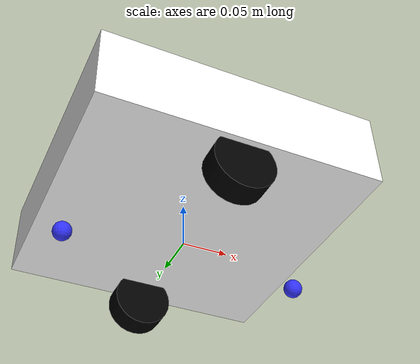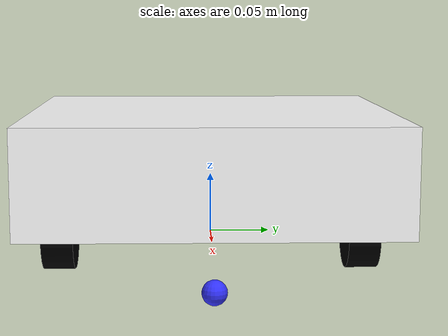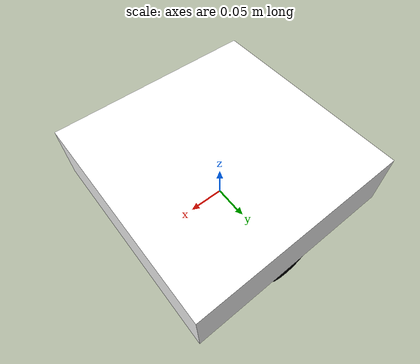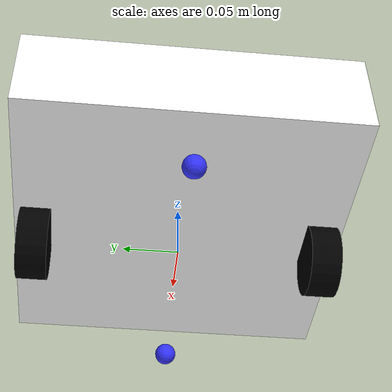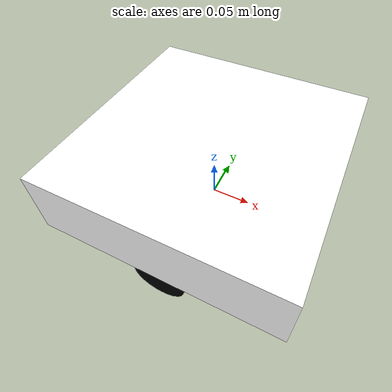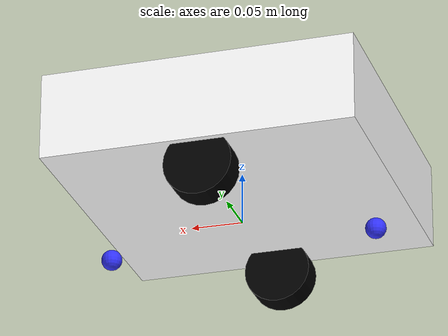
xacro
<?xml version="1.0"?>
<robot xmlns:xacro="http://www.ros.org/wiki/xacro" >

    <xacro:include filename="inertial_macros.xacro"/>

    <xacro:property name="chassis_length" value="0.30"/>
    <xacro:property name="chassis_width" value="0.30"/>
    <xacro:property name="chassis_height" value="0.085"/>
    <xacro:property name="chassis_mass" value="1.5"/>
    <xacro:property name="wheel_radius" value="0.0325"/>
    <xacro:property name="wheel_thickness" value="0.027"/>
    <xacro:property name="wheel_mass" value="0.05"/>
    <xacro:property name="wheel_offset_x" value="0.15"/>
    <xacro:property name="wheel_offset_y" value="0.13"/>
    <xacro:property name="wheel_offset_z" value="-0.02"/>
    <xacro:property name="caster_wheel_radius" value="0.01"/>
    <xacro:property name="caster_wheel_mass" value="0.1"/>
    <xacro:property name="caster_wheel_offset_x" value="0.02"/>
    <xacro:property name="caster_wheel_offset_z" value="${wheel_offset_z - wheel_radius + caster_wheel_radius}"/>
    <xacro:property name="caster1_wheel_radius" value="0.01"/>
    <xacro:property name="caster1_wheel_mass" value="0.1"/>
    <xacro:property name="caster1_wheel_offset_x" value="0.28"/>
    <xacro:property name="caster1_wheel_offset_z" value="${wheel_offset_z - wheel_radius + caster1_wheel_radius}"/>

    <material name="white">
        <color rgba="1 1 1 1" />
    </material>

    <material name="orange">
        <color rgba="1 0.3 0.1 1"/>
    </material>

    <material name="blue">
        <color rgba="0.2 0.2 1 1"/>
    </material>

    <material name="black">
        <color rgba="0 0 0 1"/>
    </material>

    <material name="red">
        <color rgba="1 0 0 1"/>
    </material>

    <!-- BASE LINK -->

    <link name="base_link">

    </link>

    <!-- BASE_FOOTPRINT LINK -->

    <joint name="base_footprint_joint" type="fixed">
        <parent link="base_link"/>
        <child link="base_footprint"/>
        <origin xyz="0 0 0" rpy="0 0 0"/>
    </joint>

    <link name="base_footprint">

    </link>

    <!-- CHASSIS LINK -->

    <joint name="chassis_joint" type="fixed">
        <parent link="base_link"/>
        <child link="chassis"/>
        <origin xyz="${-wheel_offset_x} 0 ${-wheel_offset_z}"/>
    </joint>

    <link name="chassis">
        <visual>
            <origin xyz="${chassis_length/2} 0 ${chassis_height/2}"/>
            <geometry>
                <box size="${chassis_length} ${chassis_width} ${chassis_height}"/>
            </geometry>
            <material name="white"/>
        </visual>
        <collision>
            <origin xyz="${chassis_length/2} 0 ${chassis_height/2}"/>
            <geometry>
                <box size="${chassis_length} ${chassis_width} ${chassis_height}"/>
            </geometry>
        </collision>
        <xacro:inertial_box mass="0.5" x="${chassis_length}" y="${chassis_width}" z="${chassis_height}">
            <origin xyz="${chassis_length/2} 0 ${chassis_height/2}" rpy="0 0 0"/>
        </xacro:inertial_box>
    </link>

    <gazebo reference="chassis">
        <material>Gazebo/White</material>
    </gazebo>

    <!-- LEFT WHEEL LINK -->

    <joint name="left_wheel_joint" type="continuous">
        <parent link="base_link"/>
        <child link="left_wheel"/>
        <origin xyz="0 ${wheel_offset_y} 0" rpy="-${pi/2} 0 0" />
        <axis xyz="0 0 1"/>
    </joint>

    <link name="left_wheel">
        <visual>
            <geometry>
                <cylinder radius="${wheel_radius}" length="${wheel_thickness}"/>
            </geometry>
            <material name="black"/>
        </visual>
        <collision>
            <geometry>
                <sphere radius="${wheel_radius}"/>
            </geometry>
        </collision>
        <xacro:inertial_cylinder mass="${wheel_mass}" length="${wheel_thickness}" radius="${wheel_radius}">
            <origin xyz="0 0 0" rpy="0 0 0"/>
        </xacro:inertial_cylinder>
    </link>

    <gazebo reference="left_wheel">
        <material>Gazebo/Black</material>
    </gazebo>

    <!-- RIGHT WHEEL LINK -->

    <joint name="right_wheel_joint" type="continuous">
        <parent link="base_link"/>
        <child link="right_wheel"/>
        <origin xyz="0 ${-wheel_offset_y} 0" rpy="${pi/2} 0 0" />
        <axis xyz="0 0 -1"/>
    </joint>

    <link name="right_wheel">
        <visual>
            <geometry>
                <cylinder radius="${wheel_radius}" length="${wheel_thickness}"/>
            </geometry>
            <material name="black"/>
        </visual>
        <collision>
            <geometry>
                <sphere radius="${wheel_radius}"/>
            </geometry>
        </collision>
        <xacro:inertial_cylinder mass="${wheel_mass}" length="${wheel_thickness}" radius="${wheel_radius}">
            <origin xyz="0 0 0" rpy="0 0 0"/>
        </xacro:inertial_cylinder>
    </link>

    <gazebo reference="right_wheel">
        <material>Gazebo/Black</material>
    </gazebo>

    <!-- CASTER WHEEL LINK -->

    <joint name="caster_wheel_joint" type="fixed">
        <parent link="chassis"/>
        <child link="caster_wheel"/>
        <origin xyz="${caster_wheel_offset_x} 0 ${caster_wheel_offset_z}"/>
    </joint>

    <link name="caster_wheel">
        <visual>
            <geometry>
                <sphere radius="${caster_wheel_radius}"/>
            </geometry>
            <material name="blue"/>
        </visual>
        <collision>
            <geometry>
                <sphere radius="${caster_wheel_radius}"/>
            </geometry>
        </collision>
        <xacro:inertial_sphere mass="${caster_wheel_mass}" radius="${caster_wheel_radius}">
            <origin xyz="0 0 0" rpy="0 0 0"/>
        </xacro:inertial_sphere>
    </link>

    <gazebo reference="caster_wheel">
        <material>Gazebo/Blue</material>
        <mu1 value="0.001"/>
        <mu2 value="0.001"/>
    </gazebo>

        <!-- CASTER1 WHEEL LINK -->

    <joint name="caster1_wheel_joint" type="fixed">
        <parent link="chassis"/>
        <child link="caster1_wheel"/>
        <origin xyz="${caster1_wheel_offset_x} 0 ${caster1_wheel_offset_z}"/>
    </joint>

    <link name="caster1_wheel">
        <visual>
            <geometry>
                <sphere radius="${caster1_wheel_radius}"/>
            </geometry>
            <material name="blue"/>
        </visual>
        <collision>
            <geometry>
                <sphere radius="${caster1_wheel_radius}"/>
            </geometry>
        </collision>
        <xacro:inertial_sphere mass="${caster1_wheel_mass}" radius="${caster1_wheel_radius}">
            <origin xyz="0 0 0" rpy="0 0 0"/>
        </xacro:inertial_sphere>
    </link>

    <gazebo reference="caster1_wheel">
        <material>Gazebo/Blue</material>
        <mu1 value="0.001"/>
        <mu2 value="0.001"/>
    </gazebo>

</robot>
